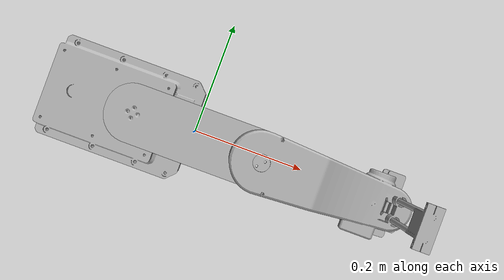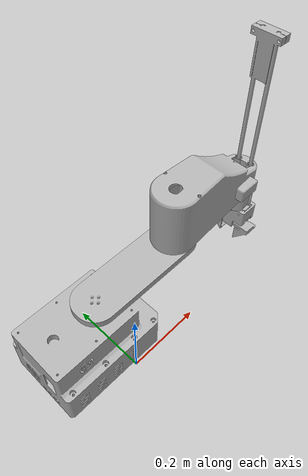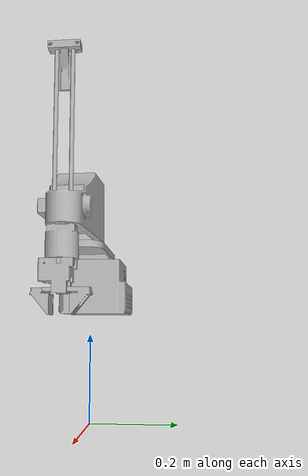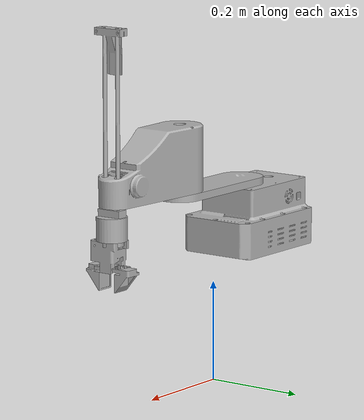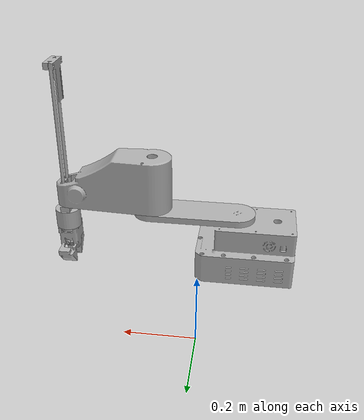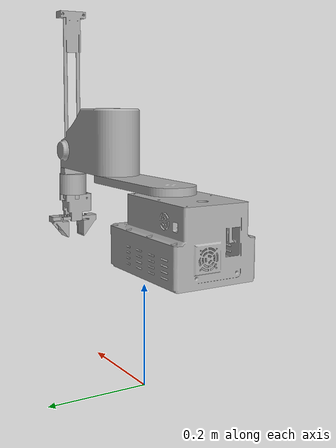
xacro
<?xml version="1.0" ?>
<robot name="scara_arm" xmlns:xacro="http://www.ros.org/wiki/xacro">

<xacro:include filename="$(find scara_arm_description)/urdf/scara_arm.xacro" />
<xacro:include filename="$(find two_finger_gripper_description)/urdf/two_finger_gripper.xacro" />

<joint name="gripper_attach" type="fixed">
  <origin xyz="0 0 0" rpy="0 1.5708 0"/>
  <parent link="link_04_1"/>
  <child link="gripper_base_link"/>
</joint>

</robot>

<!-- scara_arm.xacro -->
<robot name="scara_arm" xmlns:xacro="http://www.ros.org/wiki/xacro">

<xacro:include filename="$(find scara_arm_description)/urdf/materials.xacro" />
<xacro:include filename="$(find scara_arm_description)/urdf/scara_arm.trans" />
<xacro:include filename="$(find scara_arm_description)/urdf/scara_arm.gazebo" />
<link name="world" />
    <joint name="world_joint" type="fixed">
        <origin rpy="0 0 0" xyz="0 0 0.25" />
        <parent link="world" />
        <child link="base_link" />
    </joint>

<link name="base_link">
  <inertial>
    <origin xyz="-0.11835854812758473 -0.000276888564792295 0.07546314461319549" rpy="0 0 0"/>
    <mass value="9.76941358714018"/>
    <inertia ixx="0.040462" iyy="0.058748" izz="0.065063" ixy="0.000229" iyz="3e-06" ixz="0.003341"/>
  </inertial>
  <visual>
    <origin xyz="0 0 0" rpy="0 0 0"/>
    <geometry>
      <mesh filename="package://scara_arm_description/meshes/base_link.stl" scale="0.001 0.001 0.001"/>
    </geometry>
    <material name="silver"/>
  </visual>
  <collision>
    <origin xyz="0 0 0" rpy="0 0 0"/>
    <geometry>
      <mesh filename="package://scara_arm_description/meshes/base_link.stl" scale="0.001 0.001 0.001"/>
    </geometry>
  </collision>
</link>

<link name="link_01_1">
  <inertial>
    <origin xyz="0.08670878750712241 1.200325802990558e-08 0.006656155794027313" rpy="0 0 0"/>
    <mass value="1.9187641006386469"/>
    <inertia ixx="0.001419" iyy="0.016505" izz="0.017605" ixy="0.0" iyz="0.0" ixz="-0.000439"/>
  </inertial>
  <visual>
    <origin xyz="0.089 -0.0 -0.134" rpy="0 0 0"/>
    <geometry>
      <mesh filename="package://scara_arm_description/meshes/link_01_1.stl" scale="0.001 0.001 0.001"/>
    </geometry>
    <material name="silver"/>
  </visual>
  <collision>
    <origin xyz="0.089 -0.0 -0.134" rpy="0 0 0"/>
    <geometry>
      <mesh filename="package://scara_arm_description/meshes/link_01_1.stl" scale="0.001 0.001 0.001"/>
    </geometry>
  </collision>
</link>

<link name="link_02_1">
  <inertial>
    <origin xyz="0.08442650829809627 -0.00019960790751640374 0.04670690112194936" rpy="0 0 0"/>
    <mass value="4.429642089527778"/>
    <inertia ixx="0.010022" iyy="0.037429" izz="0.034386" ixy="0.000108" iyz="-1.5e-05" ixz="0.003844"/>
  </inertial>
  <visual>
    <origin xyz="-0.109 -0.0 -0.150161" rpy="0 0 0"/>
    <geometry>
      <mesh filename="package://scara_arm_description/meshes/link_02_1.stl" scale="0.001 0.001 0.001"/>
    </geometry>
    <material name="silver"/>
  </visual>
  <collision>
    <origin xyz="-0.109 -0.0 -0.150161" rpy="0 0 0"/>
    <geometry>
      <mesh filename="package://scara_arm_description/meshes/link_02_1.stl" scale="0.001 0.001 0.001"/>
    </geometry>
  </collision>
</link>

<link name="link_03_1">
  <inertial>
    <origin xyz="7.948171955463046e-05 0.015947235193624242 0.007476972757145983" rpy="0 0 0"/>
    <mass value="1.573240852398478"/>
    <inertia ixx="0.031125" iyy="0.031053" izz="0.000561" ixy="-1e-06" iyz="0.000143" ixz="0.000175"/>
  </inertial>
  <visual>
    <origin xyz="-0.321 0.014923 -0.190844" rpy="0 0 0"/>
    <geometry>
      <mesh filename="package://scara_arm_description/meshes/link_03_1.stl" scale="0.001 0.001 0.001"/>
    </geometry>
    <material name="silver"/>
  </visual>
  <collision>
    <origin xyz="-0.321 0.014923 -0.190844" rpy="0 0 0"/>
    <geometry>
      <mesh filename="package://scara_arm_description/meshes/link_03_1.stl" scale="0.001 0.001 0.001"/>
    </geometry>
  </collision>
</link>

<link name="link_04_1">
  <inertial>
    <origin xyz="-6.87288058324742e-05 -3.7241785767553145e-11 -0.004999674402307544" rpy="0 0 0"/>
    <mass value="0.1300483969226679"/>
    <inertia ixx="1.8e-05" iyy="1.8e-05" izz="3.4e-05" ixy="0.0" iyz="0.0" ixz="0.0"/>
  </inertial>
  <visual>
    <origin xyz="-0.3217 0.0 -0.087161" rpy="0 0 0"/>
    <geometry>
      <mesh filename="package://scara_arm_description/meshes/link_04_1.stl" scale="0.001 0.001 0.001"/>
    </geometry>
    <material name="silver"/>
  </visual>
  <collision>
    <origin xyz="-0.3217 0.0 -0.087161" rpy="0 0 0"/>
    <geometry>
      <mesh filename="package://scara_arm_description/meshes/link_04_1.stl" scale="0.001 0.001 0.001"/>
    </geometry>
  </collision>
</link>

<joint name="link_01_joint" type="revolute">
  <origin xyz="-0.089 0.0 0.134" rpy="0 0 0"/>
  <parent link="base_link"/>
  <child link="link_01_1"/>
  <axis xyz="0.0 -0.0 1.0"/>
  <limit upper="1.71042" lower="-1.43117" effort="100" velocity="100"/>
</joint>

<joint name="link_02_joint" type="revolute">
  <origin xyz="0.198 0.0 0.016161" rpy="0 0 0"/>
  <parent link="link_01_1"/>
  <child link="link_02_1"/>
  <axis xyz="0.0 0.0 1.0"/>
  <limit upper="1.43117" lower="-1.71042" effort="100" velocity="100"/>
</joint>

<joint name="link_03_joint" type="prismatic">
  <origin xyz="0.212 -0.014923 0.040683" rpy="0 0 0"/>
  <parent link="link_02_1"/>
  <child link="link_03_1"/>
  <axis xyz="0.0 0.0 1.0"/>
  <limit upper="0.0" lower="-0.23" effort="100" velocity="100"/>
</joint>

<joint name="link_04_joint" type="revolute">
  <origin xyz="0.0007 0.014923 -0.103683" rpy="0 0 0"/>
  <parent link="link_03_1"/>
  <child link="link_04_1"/>
  <axis xyz="0.0 0.0 -1.0"/>
  <limit upper="1.570796" lower="-1.570796" effort="100" velocity="100"/>
</joint>

</robot>

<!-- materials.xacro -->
<robot name="scara_arm" xmlns:xacro="http://www.ros.org/wiki/xacro" >

<material name="silver">
  <color rgba="0.700 0.700 0.700 1.000"/>
</material>

</robot>

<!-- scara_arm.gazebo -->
<robot name="scara_arm" xmlns:xacro="http://www.ros.org/wiki/xacro" >

<xacro:property name="body_color" value="Gazebo/Silver" />

<gazebo>
  <plugin name="control" filename="libgazebo_ros_control.so"/>
</gazebo>
<gazebo reference="base_link">
  <material>${body_color}</material>
  <mu1>0.2</mu1>
  <mu2>0.2</mu2>
  <selfCollide>true</selfCollide>
  <gravity>true</gravity>
</gazebo>

<gazebo reference="link_01_1">
  <material>${body_color}</material>
  <mu1>0.2</mu1>
  <mu2>0.2</mu2>
  <selfCollide>true</selfCollide>
</gazebo>

<gazebo reference="link_02_1">
  <material>${body_color}</material>
  <mu1>0.2</mu1>
  <mu2>0.2</mu2>
  <selfCollide>true</selfCollide>
</gazebo>

<gazebo reference="link_03_1">
  <material>${body_color}</material>
  <mu1>0.2</mu1>
  <mu2>0.2</mu2>
  <selfCollide>true</selfCollide>
</gazebo>

<gazebo reference="link_04_1">
  <material>${body_color}</material>
  <mu1>0.2</mu1>
  <mu2>0.2</mu2>
  <selfCollide>true</selfCollide>
</gazebo>

</robot>

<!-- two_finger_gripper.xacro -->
<robot name="two_finger_gripper" xmlns:xacro="http://www.ros.org/wiki/xacro">

<xacro:include filename="$(find two_finger_gripper_description)/urdf/two_finger_gripper.trans" />
<xacro:include filename="$(find two_finger_gripper_description)/urdf/two_finger_gripper.gazebo" />
<link name="gripper_base_link">
  <inertial>
    <origin xyz="0.023843975149766813 -0.007551602066560885 -1.7803166319307262e-07" rpy="0 0 0"/>
    <mass value="0.7371676511848216"/>
    <inertia ixx="0.000313" iyy="0.000272" izz="0.000299" ixy="-1.3e-05" iyz="0.0" ixz="0.0"/>
  </inertial>
  <visual>
    <origin xyz="0 0 0" rpy="0 0 0"/>
    <geometry>
      <mesh filename="package://two_finger_gripper_description/meshes/gripper_base_link.stl" scale="0.001 0.001 0.001"/>
    </geometry>
    <material name="silver"/>
  </visual>
  <collision>
    <origin xyz="0 0 0" rpy="0 0 0"/>
    <geometry>
      <mesh filename="package://two_finger_gripper_description/meshes/gripper_base_link.stl" scale="0.001 0.001 0.001"/>
    </geometry>
  </collision>
</link>

<link name="pinion_1">
  <inertial>
    <origin xyz="0.0034043394457755963 1.3778876043618604e-12 -1.2631614722542942e-12" rpy="0 0 0"/>
    <mass value="0.020624177027043226"/>
    <inertia ixx="2e-06" iyy="1e-06" izz="1e-06" ixy="-0.0" iyz="-0.0" ixz="0.0"/>
  </inertial>
  <visual>
    <origin xyz="-0.0485 -0.001 0.0" rpy="0 0 0"/>
    <geometry>
      <mesh filename="package://two_finger_gripper_description/meshes/pinion_1.stl" scale="0.001 0.001 0.001"/>
    </geometry>
    <material name="silver"/>
  </visual>
  <collision>
    <origin xyz="-0.0485 -0.001 0.0" rpy="0 0 0"/>
    <geometry>
      <mesh filename="package://two_finger_gripper_description/meshes/pinion_1.stl" scale="0.001 0.001 0.001"/>
    </geometry>
  </collision>
</link>

<link name="gripper_right_1">
  <inertial>
    <origin xyz="0.010859809536370418 -0.0037061649756109875 -0.016631094134670964" rpy="0 0 0"/>
    <mass value="0.19983948074258262"/>
    <inertia ixx="6.3e-05" iyy="5.4e-05" izz="6.8e-05" ixy="6e-06" iyz="8e-06" ixz="7e-06"/>
  </inertial>
  <visual>
    <origin xyz="-0.0567 -0.014 -0.0182" rpy="0 0 0"/>
    <geometry>
      <mesh filename="package://two_finger_gripper_description/meshes/gripper_right_1.stl" scale="0.001 0.001 0.001"/>
    </geometry>
    <material name="silver"/>
  </visual>
  <collision>
    <origin xyz="-0.0567 -0.014 -0.0182" rpy="0 0 0"/>
    <geometry>
      <mesh filename="package://two_finger_gripper_description/meshes/gripper_right_1.stl" scale="0.001 0.001 0.001"/>
    </geometry>
  </collision>
</link>

<link name="gripper_left_1">
  <inertial>
    <origin xyz="0.010257810630306105 0.003203941855784714 0.016553712338734785" rpy="0 0 0"/>
    <mass value="0.18914730605530125"/>
    <inertia ixx="6.1e-05" iyy="5.1e-05" izz="6.6e-05" ixy="-4e-06" iyz="8e-06" ixz="-6e-06"/>
  </inertial>
  <visual>
    <origin xyz="-0.0567 0.012 0.0182" rpy="0 0 0"/>
    <geometry>
      <mesh filename="package://two_finger_gripper_description/meshes/gripper_left_1.stl" scale="0.001 0.001 0.001"/>
    </geometry>
    <material name="silver"/>
  </visual>
  <collision>
    <origin xyz="-0.0567 0.012 0.0182" rpy="0 0 0"/>
    <geometry>
      <mesh filename="package://two_finger_gripper_description/meshes/gripper_left_1.stl" scale="0.001 0.001 0.001"/>
    </geometry>
  </collision>
</link>

<joint name="gripper_joint" type="revolute">
  <origin xyz="0.0485 0.001 0.0" rpy="0 0 0"/>
  <parent link="gripper_base_link"/>
  <child link="pinion_1"/>
  <axis xyz="1.0 -0.0 -0.0"/>
  <limit upper="2.96706" lower="0.0" effort="100" velocity="100"/>
</joint>

<joint name="right_gripper_joint" type="prismatic">
  <origin xyz="0.0567 0.014 0.0182" rpy="0 0 0"/>
  <parent link="gripper_base_link"/>
  <child link="gripper_right_1"/>
  <axis xyz="0.0 1.0 0.0"/>
  <mimic joint="gripper_joint" multiplier="-0.011796189" offset="0.035"/>
  <limit upper="0.035" lower="0.001" effort="100" velocity="100"/>
</joint>

<joint name="left_gripper_joint" type="prismatic">
  <origin xyz="0.0567 -0.012 -0.0182" rpy="0 0 0"/>
  <parent link="gripper_base_link"/>
  <child link="gripper_left_1"/>
  <axis xyz="0.0 1.0 0.0"/>
  <mimic joint="gripper_joint" multiplier="0.011796189" offset="-0.035"/>
  <limit upper="-0.001" lower="-0.035" effort="100" velocity="100"/>
</joint>

</robot>

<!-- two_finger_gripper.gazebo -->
<robot name="two_finger_gripper" xmlns:xacro="http://www.ros.org/wiki/xacro" >

<xacro:property name="body_color" value="Gazebo/Silver" />

<gazebo>
  <plugin name="control" filename="libgazebo_ros_control.so"/>
</gazebo>
<gazebo reference="gripper_base_link">
  <material>${body_color}</material>
  <mu1>0.2</mu1>
  <mu2>0.2</mu2>
  <selfCollide>true</selfCollide>
  <gravity>true</gravity>
</gazebo>

<gazebo reference="pinion_1">
  <material>${body_color}</material>
  <mu1>0.2</mu1>
  <mu2>0.2</mu2>
  <selfCollide>true</selfCollide>
</gazebo>

<gazebo reference="gripper_right_1">
  <material>${body_color}</material>
  <mu1>0.2</mu1>
  <mu2>0.2</mu2>
  <selfCollide>true</selfCollide>
</gazebo>

<gazebo reference="gripper_left_1">
  <material>${body_color}</material>
  <mu1>0.2</mu1>
  <mu2>0.2</mu2>
  <selfCollide>true</selfCollide>
</gazebo>

</robot>
